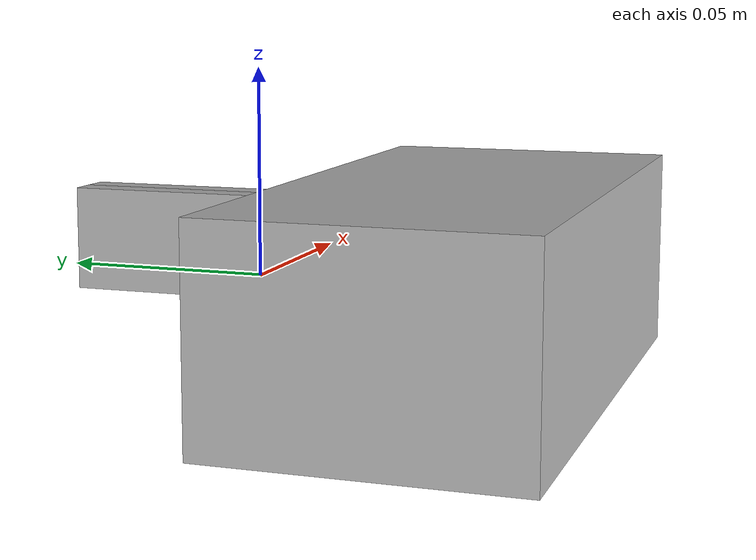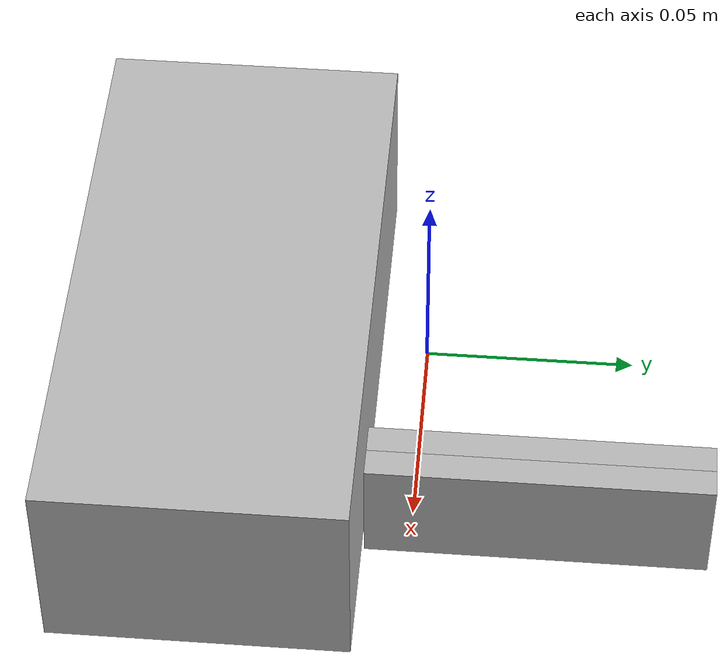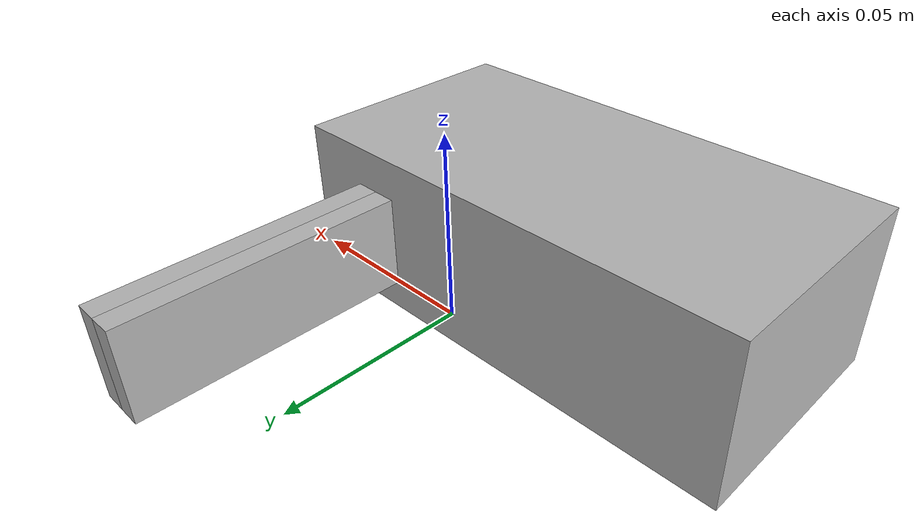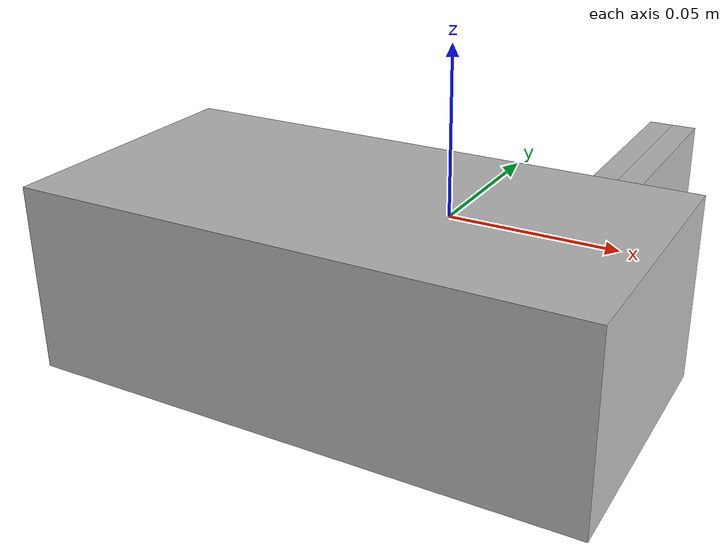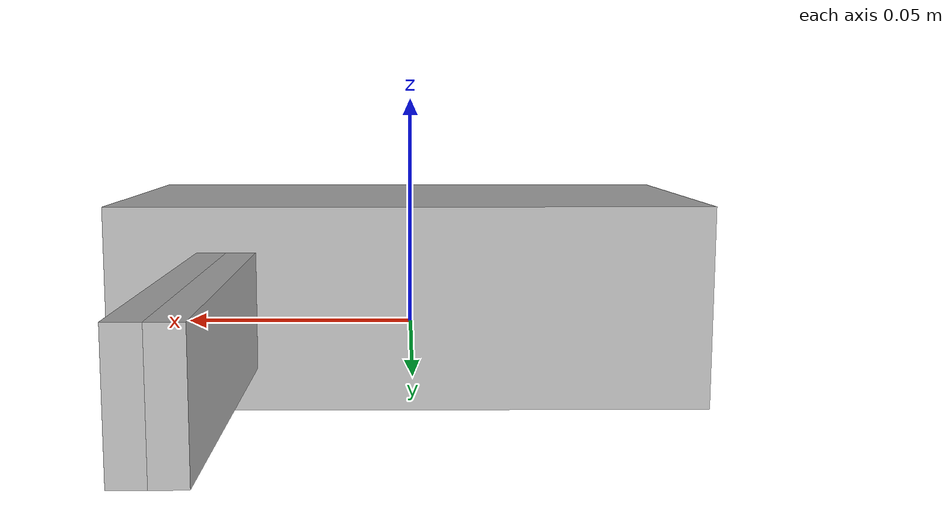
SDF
<?xml version='1.0'?>
<sdf version='1.6'>
  <model name='Schunk_Gripper'>
    <link name='body'>
      <pose frame=''>0 -0.049133 0 0 -0 0</pose>
      <inertial>
        <mass>0.988882</mass>
        <inertia>
          <ixx>0.162992</ixx>
          <ixy>0</ixy>
          <ixz>0</ixz>
          <iyy>0.162992</iyy>
          <iyz>0</iyz>
          <izz>0.164814</izz>
        </inertia>
        <pose frame=''>0 0 0 0 -0 0</pose>
      </inertial>
      <visual name='visual'>
        <pose frame=''>0 0 0 0 -0 0</pose>
        <geometry>
          <box>
            <size>0.146 0.0725 0.049521</size>
          </box>
        </geometry>
      </visual>
    </link>
    <link name='left_finger'>
      <pose frame=''>0.040 0.029 0 0 -0 0</pose>
      <inertial>
        <mass>0.05</mass>
        <inertia>
          <ixx>0.16</ixx>
          <ixy>0</ixy>
          <ixz>0</ixz>
          <iyy>0.16</iyy>
          <iyz>0</iyz>
          <izz>0.16</izz>
        </inertia>
        <pose frame=''>0 0 0 0 -0 0</pose>
      </inertial>
      <visual name='visual'>
        <pose frame=''>0 0 0 0 -0 0</pose>
        <geometry>
          <box>
            <size>0.007 0.081 0.028</size>
          </box>
        </geometry>
      </visual>
    </link>
    <link name='right_finger'> <!-- When viewing from the top and +x-axis points back -->
      <pose frame=''>0.047 0.029 0 0 0 0</pose>
      <inertial>
        <mass>0.05</mass>
        <inertia>
          <ixx>0.16</ixx>
          <ixy>0</ixy>
          <ixz>0</ixz>
          <iyy>0.16</iyy>
          <iyz>0</iyz>
          <izz>0.16</izz>
        </inertia>
        <pose frame=''>0 0 0 0 -0 0</pose>
      </inertial>
      <visual name='visual'>
        <pose frame=''>0 0 0 0 -0 0</pose>
        <geometry>
          <box>
            <size>0.007 0.081 0.028</size>
          </box>
        </geometry>
      </visual>
    </link>
    <!-- Collision filter groups-->
    <collision_filter_group name="finger_filter">
      <member link="left_finger"/>
      <member link="right_finger"/>
      <ignored_collision_filter_group collision_filter_group="finger_filter"/>
    </collision_filter_group>
    <joint name='finger_sliding_joint' type='prismatic'>
      <parent>right_finger</parent>
      <child>left_finger</child>
      <pose frame=''>0 0 0 0 -0 0</pose>
      <axis>
        <xyz>1 0 0</xyz>
        <use_parent_model_frame>0</use_parent_model_frame>
        <!-- Drake attaches an actuator to all and only joints with a nonzero
             effort limit. -->
        <limit>
          <lower>-0.1</lower> <!-- offset w.r.t. absolute zero -->
          <upper>0</upper>
          <effort>90</effort>
        </limit>
      </axis>
    </joint>
  </model>
</sdf>
